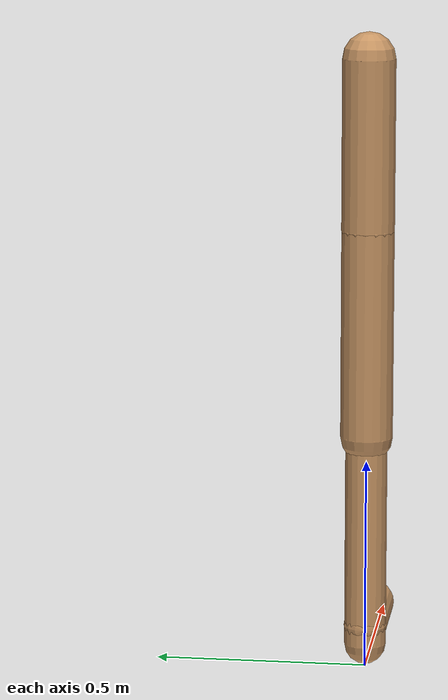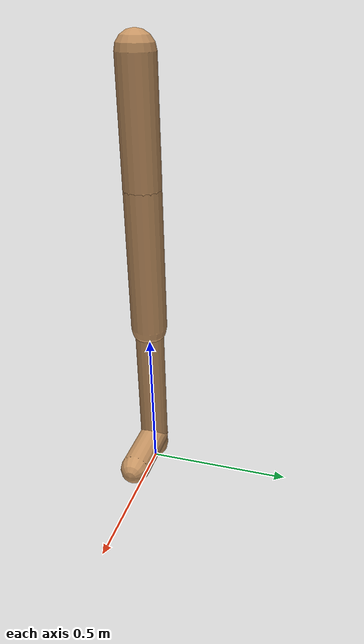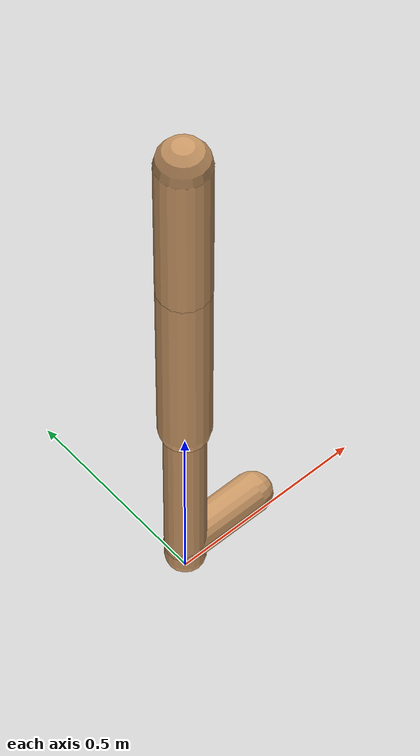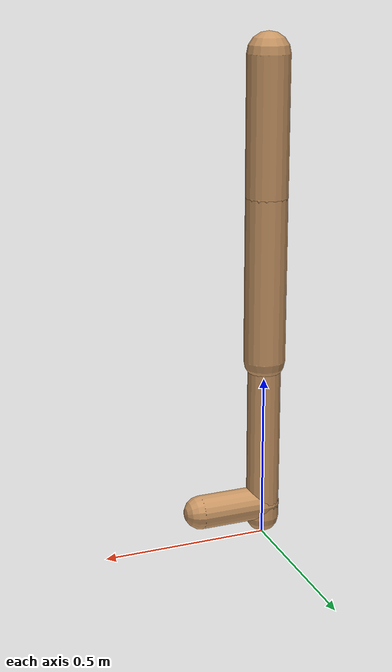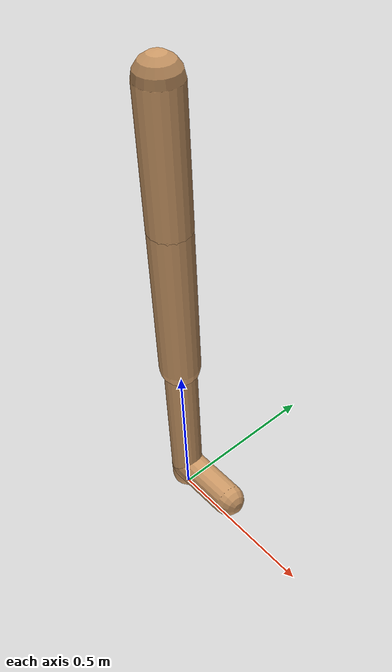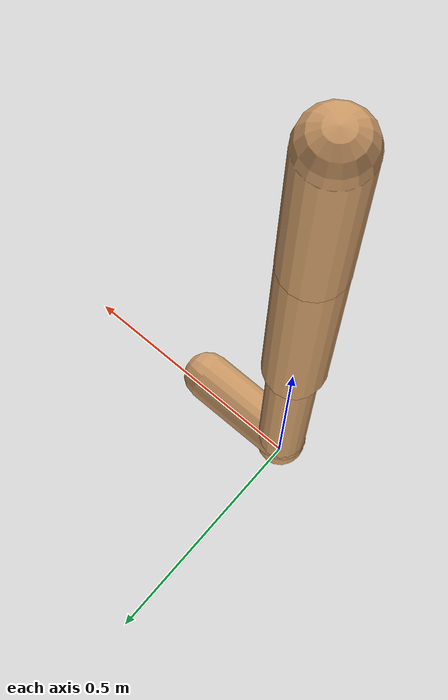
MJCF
<mujoco model="walker2d">
  <compiler angle="degree" coordinate="global" inertiafromgeom="true" />
  <default>
    <joint armature="0.01" damping=".1" limited="true" />
    <geom conaffinity="0" condim="3" contype="1" density="1000" friction="0.8 .1 .1" rgba="0.8 0.6 .4 1" />
  </default>
  <option integrator="RK4" timestep="0.002" />
  <worldbody>

    <body name="torso" pos="0 0 0.08319135903053451">
      <joint armature="0" axis="1 0 0" damping="0" limited="false" name="ignorex" pos="0 0 0" stiffness="0" type="slide" />
      <joint armature="0" axis="0 0 1" damping="0" limited="false" name="ignorez" pos="0 0 0" ref="1.25" stiffness="0" type="slide" />
      <joint armature="0" axis="0 1 0" damping="0" limited="false" name="ignorey" pos="0 0 0" stiffness="0" type="hinge" />
      <geom fromto="0 0 1.45 0 0 1.05" name="torso_geom" size="0.06210534239424142" type="capsule" />
      <body name="thigh">
        <joint axis="0 -1 0" name="thigh_joint" pos="0 0 1.05" range="-150 0" type="hinge" />
        <geom fromto="0.0 0.0 1.05 0.0 0.0 0.5605935667750099" name="thigh_geom" size="0.06170674266198008" type="capsule" />
        <body name="leg" pos="0.0 0.0 -0.039406433224990045">
          <joint axis="0 -1 0" name="leg_joint" pos="0 0 0.6" range="-150 0" type="hinge" />
          <geom fromto="0.0 0.0 0.6 0.0 0.0 0.05621507419445553" name="leg_geom" size="0.04936539412958406" type="capsule" />
          <body name="foot" pos="0.0 0.0 -0.043784925805544474">
            <joint axis="0 -1 0" name="foot_joint" pos="0 0 0.1" range="-45 45" type="hinge" />
            <geom fromto="-0.0 0.0 0.1 0.20243527805150238 0.0 0.1" name="foot_geom" size="0.05086135535592569" type="capsule" />
          </body>
        </body>
      </body>

      <body name="thigh_left">
        <joint axis="0 -1 0" name="thigh_left_joint" pos="0 0 1.05" range="-150 0" type="hinge" />
        <geom fromto="0.0 0.0 1.05 0.0 0.0 0.5605935667750099" name="thigh_left_geom" rgba=".7 .3 .6 1" size="0.06170674266198008" type="capsule" />
        <body name="leg_left" pos="0.0 0.0 -0.039406433224990045">
          <joint axis="0 -1 0" name="leg_left_joint" pos="0 0 0.6" range="-150 0" type="hinge" />
          <geom fromto="0.0 0.0 0.6 0.0 0.0 0.05621507419445553" name="leg_left_geom" rgba=".7 .3 .6 1" size="0.04936539412958406" type="capsule" />
          <body name="foot_left" pos="0.0 0.0 -0.043784925805544474">
            <joint axis="0 -1 0" name="foot_left_joint" pos="0 0 0.1" range="-45 45" type="hinge" />
            <geom fromto="-0.0 0.0 0.1 0.20243527805150238 0.0 0.1" name="foot_left_geom" rgba=".7 .3 .6 1" size="0.05086135535592569" type="capsule" />
          </body>
        </body>
      </body>
    </body>
  </worldbody>
  <actuator>

    <motor ctrllimited="true" ctrlrange="-1.0 1.0" gear="100" joint="thigh_joint" />
    <motor ctrllimited="true" ctrlrange="-1.0 1.0" gear="100" joint="leg_joint" />
    <motor ctrllimited="true" ctrlrange="-1.0 1.0" gear="100" joint="foot_joint" />
    <motor ctrllimited="true" ctrlrange="-1.0 1.0" gear="100" joint="thigh_left_joint" />
    <motor ctrllimited="true" ctrlrange="-1.0 1.0" gear="100" joint="leg_left_joint" />
    <motor ctrllimited="true" ctrlrange="-1.0 1.0" gear="100" joint="foot_left_joint" />

  </actuator>
</mujoco>
